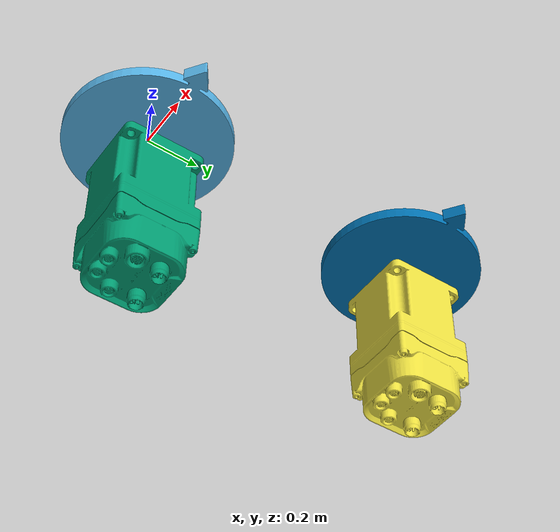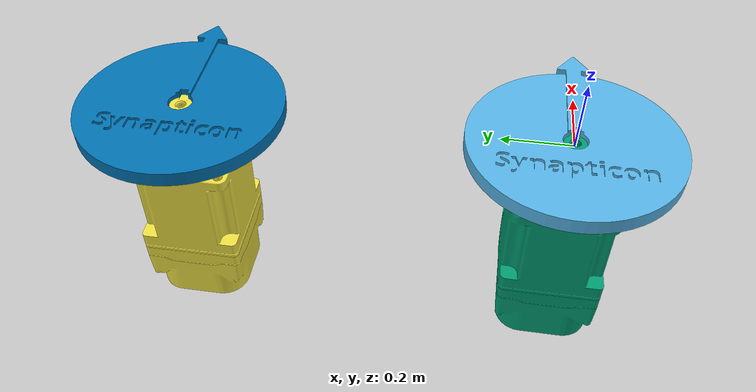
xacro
<?xml version="1.0"?>
<robot xmlns:xacro="http://www.ros.org/wiki/xacro" name="seven_dof">
  <xacro:arg name="prefix" default="" />
  <xacro:arg name="eth_device" default="" />
  <xacro:arg name="yaw1_mechanical_reduction" default="169.85" />
  <xacro:arg name="yaw2_mechanical_reduction" default="169.85" />
  <xacro:arg name="elev1_j1_mechanical_reduction" default="1.0" />
  <xacro:arg name="elev1_j2_mechanical_reduction" default="169.85" />
  <xacro:arg name="wrist_yaw_mechanical_reduction" default="169.85" />
  <xacro:arg name="wrist_pitch_mechanical_reduction" default="169.85" />
  <xacro:arg name="wrist_roll_mechanical_reduction" default="169.85" />

  <xacro:include filename="$(find synapticon_ros2_control)/urdf/seven_dof_macro.urdf.xacro" />

  <xacro:include filename="$(find synapticon_ros2_control)/ros2_control/seven_dof.ros2_control.xacro" />

  <link name="world"/>

  <xacro:seven_dof parent="world" prefix="$(arg prefix)">
    <origin xyz="0 0 0" rpy="0 0 0" />
  </xacro:seven_dof>

  <xacro:seven_dof_ros2_control name="SevenDofRos2Control"
    prefix="$(arg prefix)"
    eth_device="$(arg eth_device)"
    yaw1_mechanical_reduction="$(arg yaw1_mechanical_reduction)"
    yaw2_mechanical_reduction="$(arg yaw2_mechanical_reduction)"
    elev1_j1_mechanical_reduction="$(arg elev1_j1_mechanical_reduction)"
    elev1_j2_mechanical_reduction="$(arg elev1_j2_mechanical_reduction)"
    wrist_yaw_mechanical_reduction="$(arg wrist_yaw_mechanical_reduction)"
    wrist_pitch_mechanical_reduction="$(arg wrist_pitch_mechanical_reduction)"
    wrist_roll_mechanical_reduction="$(arg wrist_roll_mechanical_reduction)"/>

</robot>

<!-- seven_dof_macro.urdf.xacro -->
<robot xmlns:xacro="http://www.ros.org/wiki/xacro">

  <xacro:macro name="seven_dof" params="parent prefix *origin">

  <!-- Constants for robot dimensions -->
  <xacro:property name="mass" value="1" />
  <xacro:property name="width" value="0.1" />
  <xacro:property name="height1" value="2" />
  <xacro:property name="height2" value="1" />
  <xacro:property name="height3" value="1" />
  <xacro:property name="axel_offset" value="0.00" />

  <joint name="${prefix}base_joint" type="fixed">
    <xacro:insert_block name="origin" />
    <parent link="${parent}"/>
    <child link="${prefix}base_link" />
  </joint>

  <!-- Base Link -->
  <link name="${prefix}base_link">
      <visual>
        <origin xyz="0 0 0" rpy="0 0 0"/>
        <geometry>
          <mesh filename="package://synapticon_ros2_control/meshes/flywheel.stl" scale="0.005 0.005 0.005"/>
        </geometry>
      </visual>
      <collision>
        <origin xyz="0 0 0" rpy="0 0 0"/>
        <geometry>
          <mesh filename="package://synapticon_ros2_control/meshes/flywheel.stl" scale="0.005 0.005 0.005"/>
        </geometry>
      </collision>
   </link>

  <joint name="${prefix}joint1" type="continuous">
    <parent link="${prefix}base_link"/>
    <child link="${prefix}link1"/>
    <origin xyz="0 0 0" rpy="0 0 0"/>
    <axis xyz="0 0 1"/>
    <dynamics damping="0.7"/>
    <limit effort="100" velocity="1.0"/>
  </joint>

  <!-- Middle Link -->
  <link name="${prefix}link1">
      <visual>
        <origin xyz="0 0 0" rpy="0 0 0"/>
        <geometry>
          <mesh filename="package://synapticon_ros2_control/meshes/motor.stl" scale="0.005 0.005 0.005"/>
        </geometry>
      </visual>
      <collision>
        <origin xyz="0 0 0" rpy="0 0 0"/>
        <geometry>
          <mesh filename="package://synapticon_ros2_control/meshes/motor.stl" scale="0.005 0.005 0.005"/>
        </geometry>
      </collision>
    </link>

  <joint name="${prefix}fixed_joint" type="fixed">  <!-- Renamed to avoid duplicate base_joint -->
    <parent link="${prefix}link1"/>
    <child link="${prefix}link2"/>
    <origin xyz="0 1.1 0" rpy="0 0 0"/>
  </joint>

  <!-- Fixed Link -->
  <link name="${prefix}link2">
      <visual>
        <origin xyz="0 0 0" rpy="0 0 0"/>
        <geometry>
          <mesh filename="package://synapticon_ros2_control/meshes/motor.stl" scale="0.005 0.005 0.005"/>
        </geometry>
      </visual>
      <collision>
        <origin xyz="0 0 0" rpy="0 0 0"/>
        <geometry>
          <mesh filename="package://synapticon_ros2_control/meshes/motor.stl" scale="0.005 0.005 0.005"/>
        </geometry>
      </collision>
   </link>

  <joint name="${prefix}joint2" type="continuous">
    <parent link="${prefix}link2"/>
    <child link="${prefix}link3"/>
    <origin xyz="0 0 0" rpy="0 0 0"/>
    <axis xyz="0 0 1"/>
    <dynamics damping="0.7"/>
    <limit effort="100" velocity="1.0"/>
  </joint>

  <link name="${prefix}link3">
      <visual>
        <origin xyz="0 0 0" rpy="0 0 0"/>
        <geometry>
          <mesh filename="package://synapticon_ros2_control/meshes/flywheel.stl" scale="0.005 0.005 0.005"/>
        </geometry>
      </visual>
      <collision>
        <origin xyz="0 0 0" rpy="0 0 0"/>
        <geometry>
          <mesh filename="package://synapticon_ros2_control/meshes/flywheel.stl" scale="0.005 0.005 0.005"/>
        </geometry>
      </collision>
   </link>

  <joint name="${prefix}joint3" type="continuous">
    <parent link="${prefix}link3"/>
    <child link="${prefix}link4"/>
    <origin xyz="0 0 0" rpy="0 0 0"/>
    <axis xyz="0 0 1"/>
    <dynamics damping="0.7"/>
    <limit effort="100" velocity="1.0"/>
  </joint>

  <link name="${prefix}link4">
      <visual>
        <origin xyz="0 0 0" rpy="0 0 0"/>
        <geometry>
          <mesh filename="package://synapticon_ros2_control/meshes/flywheel.stl" scale="0.005 0.005 0.005"/>
        </geometry>
      </visual>
      <collision>
        <origin xyz="0 0 0" rpy="0 0 0"/>
        <geometry>
          <mesh filename="package://synapticon_ros2_control/meshes/flywheel.stl" scale="0.005 0.005 0.005"/>
        </geometry>
      </collision>
   </link>

  <joint name="${prefix}joint4" type="continuous">
    <parent link="${prefix}link4"/>
    <child link="${prefix}link5"/>
    <origin xyz="0 0 0" rpy="0 0 0"/>
    <axis xyz="0 0 1"/>
    <dynamics damping="0.7"/>
    <limit effort="100" velocity="1.0"/>
  </joint>

  <link name="${prefix}link5">
      <visual>
        <origin xyz="0 0 0" rpy="0 0 0"/>
        <geometry>
          <mesh filename="package://synapticon_ros2_control/meshes/flywheel.stl" scale="0.005 0.005 0.005"/>
        </geometry>
      </visual>
      <collision>
        <origin xyz="0 0 0" rpy="0 0 0"/>
        <geometry>
          <mesh filename="package://synapticon_ros2_control/meshes/flywheel.stl" scale="0.005 0.005 0.005"/>
        </geometry>
      </collision>
   </link>

  <joint name="${prefix}joint5" type="continuous">
    <parent link="${prefix}link5"/>
    <child link="${prefix}link6"/>
    <origin xyz="0 0 0" rpy="0 0 0"/>
    <axis xyz="0 0 1"/>
    <dynamics damping="0.7"/>
    <limit effort="100" velocity="1.0"/>
  </joint>

  <link name="${prefix}link6">
      <visual>
        <origin xyz="0 0 0" rpy="0 0 0"/>
        <geometry>
          <mesh filename="package://synapticon_ros2_control/meshes/flywheel.stl" scale="0.005 0.005 0.005"/>
        </geometry>
      </visual>
      <collision>
        <origin xyz="0 0 0" rpy="0 0 0"/>
        <geometry>
          <mesh filename="package://synapticon_ros2_control/meshes/flywheel.stl" scale="0.005 0.005 0.005"/>
        </geometry>
      </collision>
   </link>

  <joint name="${prefix}joint6" type="continuous">
    <parent link="${prefix}link6"/>
    <child link="${prefix}link7"/>
    <origin xyz="0 0 0" rpy="0 0 0"/>
    <axis xyz="0 0 1"/>
    <dynamics damping="0.7"/>
    <limit effort="100" velocity="1.0"/>
  </joint>

  <link name="${prefix}link7">
      <visual>
        <origin xyz="0 0 0" rpy="0 0 0"/>
        <geometry>
          <mesh filename="package://synapticon_ros2_control/meshes/flywheel.stl" scale="0.005 0.005 0.005"/>
        </geometry>
      </visual>
      <collision>
        <origin xyz="0 0 0" rpy="0 0 0"/>
        <geometry>
          <mesh filename="package://synapticon_ros2_control/meshes/flywheel.stl" scale="0.005 0.005 0.005"/>
        </geometry>
      </collision>
   </link>

  <joint name="${prefix}joint7" type="continuous">
    <parent link="${prefix}link7"/>
    <child link="${prefix}link8"/>
    <origin xyz="0 0 0" rpy="0 0 0"/>
    <axis xyz="0 0 1"/>
    <dynamics damping="0.7"/>
    <limit effort="100" velocity="1.0"/>
  </joint>

  <link name="${prefix}link8">
      <visual>
        <origin xyz="0 0 0" rpy="0 0 0"/>
        <geometry>
          <mesh filename="package://synapticon_ros2_control/meshes/flywheel.stl" scale="0.005 0.005 0.005"/>
        </geometry>
      </visual>
      <collision>
        <origin xyz="0 0 0" rpy="0 0 0"/>
        <geometry>
          <mesh filename="package://synapticon_ros2_control/meshes/flywheel.stl" scale="0.005 0.005 0.005"/>
        </geometry>
      </collision>
   </link>

  </xacro:macro>

</robot>
